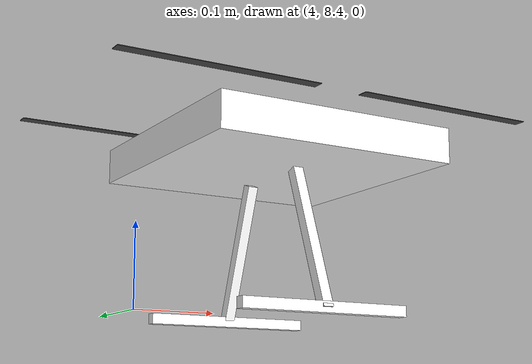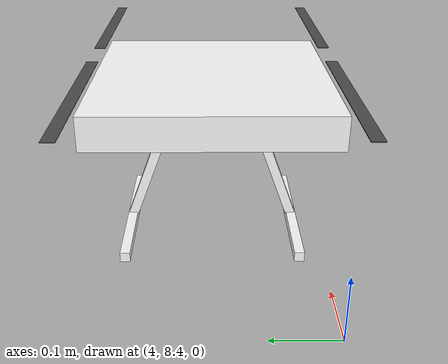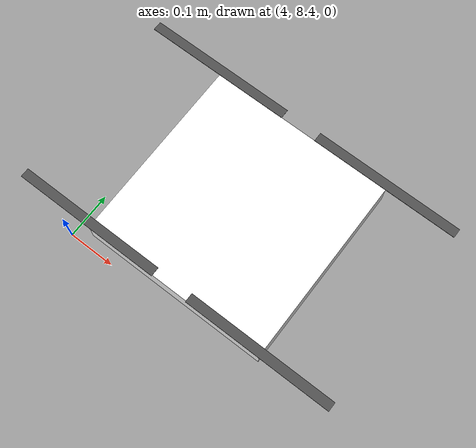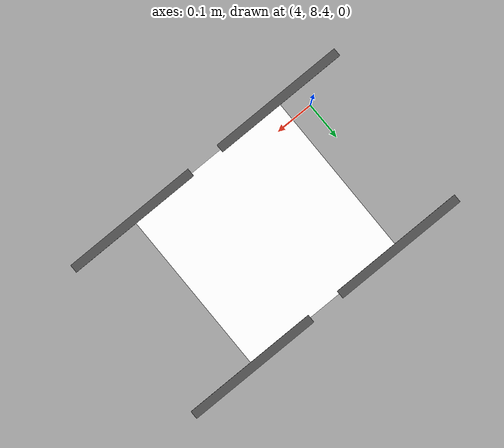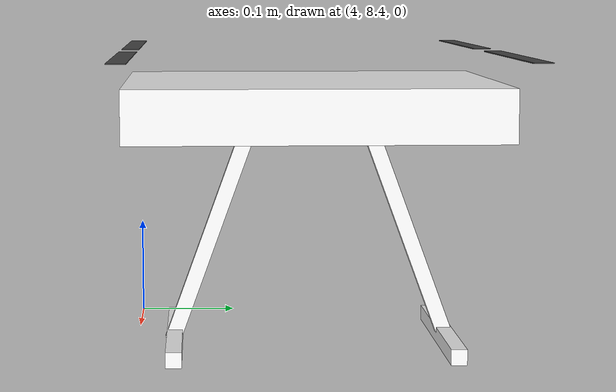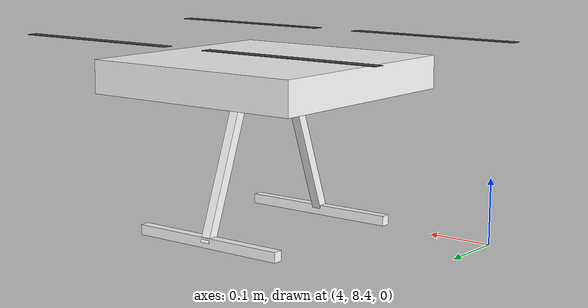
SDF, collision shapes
<?xml version="1.0" ?>
<sdf version="1.9">

    <model name='x500_base'>
      <pose>4.28082 8.57073 0.24 0 -0 0</pose>
      <self_collide>false</self_collide>
      <static>false</static>
      <link name='base_link'>
        <inertial>
          <mass>2</mass>
          <inertia>
            <ixx>0.021666700000000001</ixx>
            <ixy>0</ixy>
            <ixz>0</ixz>
            <iyy>0.021666700000000001</iyy>
            <iyz>0</iyz>
            <izz>0.040000000000000001</izz>
          </inertia>
          <pose>0 0 0 0 -0 0</pose>
        </inertial>
        <gravity>true</gravity>
        <velocity_decay/>
        <visual name='base_link_visual'>
          <pose>0 0 .025 0 0 3.141592654</pose>
          <geometry>
            <mesh>
              <scale>1 1 1</scale>
              <uri>https://fuel.gazebosim.org/1.0/px4/models/x500_base/1/files/meshes/NXP-HGD-CF.dae</uri>
            </mesh>
          </geometry>
        </visual>
        <visual name='5010_motor_base_0'>
          <pose>0.174 0.174 .032 0 0 -.45</pose>
          <geometry>
            <mesh>
              <scale>1 1 1</scale>
              <uri>https://fuel.gazebosim.org/1.0/px4/models/x500_base/1/files/meshes/5010Base.dae</uri>
            </mesh>
          </geometry>
        </visual>
        <visual name='5010_motor_base_1'>
          <pose>-0.174 0.174 .032 0 0 -.45</pose>
          <geometry>
            <mesh>
              <scale>1 1 1</scale>
              <uri>https://fuel.gazebosim.org/1.0/px4/models/x500_base/1/files/meshes/5010Base.dae</uri>
            </mesh>
          </geometry>
        </visual>
        <visual name='5010_motor_base_2'>
          <pose>0.174 -0.174 .032 0 0 -.45</pose>
          <geometry>
            <mesh>
              <scale>1 1 1</scale>
              <uri>https://fuel.gazebosim.org/1.0/px4/models/x500_base/1/files/meshes/5010Base.dae</uri>
            </mesh>
          </geometry>
        </visual>
        <visual name='5010_motor_base_3'>
          <pose>-0.174 -0.174 .032 0 0 -.45</pose>
          <geometry>
            <mesh>
              <scale>1 1 1</scale>
              <uri>https://fuel.gazebosim.org/1.0/px4/models/x500_base/1/files/meshes/5010Base.dae</uri>
            </mesh>
          </geometry>
        </visual>
        <visual name='NXP_FMUK66_FRONT'>
          <pose>0.047 .001 .043 1 0 1.57</pose>
          <cast_shadows>false</cast_shadows>
          <geometry>
            <plane>
              <normal>0 0 1</normal>
              <size>0.013 0.007</size>
            </plane>
          </geometry>
          <material>
            <diffuse>1 1 1 1</diffuse>
            <specular>1 1 1 1</specular>
            <pbr>
              <metal>
                <albedo_map>https://fuel.gazebosim.org/1.0/px4/models/x500_base/1/files/materials/textures/nxp.png</albedo_map>
              </metal>
            </pbr>
          </material>
        </visual>
        <visual name='NXP_FMUK66_TOP'>
          <pose>-0.023 0 .0515 0 0 -1.57</pose>
          <cast_shadows>false</cast_shadows>
          <geometry>
            <plane>
              <normal>0 0 1</normal>
              <size>0.013 0.007</size>
            </plane>
          </geometry>
          <material>
            <diffuse>1 1 1 1</diffuse>
            <specular>1 1 1 1</specular>
            <pbr>
              <metal>
                <albedo_map>https://fuel.gazebosim.org/1.0/px4/models/x500_base/1/files/materials/textures/nxp.png</albedo_map>
              </metal>
            </pbr>
          </material>
        </visual>
        <visual name='RDDRONE_FMUK66_TOP'>
          <pose>-.03 0 .0515 0 0 -1.57</pose>
          <cast_shadows>false</cast_shadows>
          <geometry>
            <plane>
              <normal>0 0 1</normal>
              <size>0.032 0.0034</size>
            </plane>
          </geometry>
          <material>
            <diffuse>1 1 1 1</diffuse>
            <specular>1 1 1 1</specular>
            <pbr>
              <metal>
                <albedo_map>https://fuel.gazebosim.org/1.0/px4/models/x500_base/1/files/materials/textures/rd.png</albedo_map>
              </metal>
            </pbr>
          </material>
        </visual>
        <collision name='base_link_collision_0'>
          <pose>0 0 .007 0 0 0</pose>
          <geometry>
            <box>
              <size>0.353553 0.353553 0.05</size>
            </box>
          </geometry>
          <surface>
            <contact>
              <ode>
                <min_depth>0.001</min_depth>
                <max_vel>0</max_vel>
              </ode>
            </contact>
            <friction>
              <ode/>
            </friction>
            <bounce/>
          </surface>
        </collision>
        <collision name='base_link_collision_1'>
          <pose>0 -0.098 -.123 -0.35 0 0</pose>
          <geometry>
            <box>
              <size>0.015 0.015 0.21</size>
            </box>
          </geometry>
          <surface>
            <contact>
              <ode>
                <min_depth>0.001</min_depth>
                <max_vel>0</max_vel>
              </ode>
            </contact>
            <friction>
              <ode/>
            </friction>
            <bounce/>
          </surface>
        </collision>
        <collision name='base_link_collision_2'>
          <pose>0 0.098 -.123 0.35 0 0</pose>
          <geometry>
            <box>
              <size>0.015 0.015 0.21</size>
            </box>
          </geometry>
          <surface>
            <contact>
              <ode>
                <min_depth>0.001</min_depth>
                <max_vel>0</max_vel>
              </ode>
            </contact>
            <friction>
              <ode/>
            </friction>
            <bounce/>
          </surface>
        </collision>
        <collision name='base_link_collision_3'>
          <pose>0 -0.132 -.2195 0 0 0</pose>
          <geometry>
            <box>
              <size>0.25 0.015 0.015</size>
            </box>
          </geometry>
          <surface>
            <contact>
              <ode>
                <min_depth>0.001</min_depth>
                <max_vel>0</max_vel>
              </ode>
            </contact>
            <friction>
              <ode/>
            </friction>
            <bounce/>
          </surface>
        </collision>
        <collision name='base_link_collision_4'>
          <pose>0 0.132 -.2195 0 0 0</pose>
          <geometry>
            <box>
              <size>0.25 0.015 0.015</size>
            </box>
          </geometry>
          <surface>
            <contact>
              <ode>
                <min_depth>0.001</min_depth>
                <max_vel>0</max_vel>
              </ode>
            </contact>
            <friction>
              <ode/>
            </friction>
            <bounce/>
          </surface>
        </collision>
        <sensor name='air_pressure_sensor' type='air_pressure'>
          <pose>0 0 0 0 -0 0</pose>
          <topic>__default__</topic>
          <update_rate>50</update_rate>
          <enable_metrics>false</enable_metrics>
          <air_pressure>
            <reference_altitude>0</reference_altitude>
            <pressure>
              <noise type='gaussian'>
                <mean>0</mean>
                <stddev>0.01</stddev>
                <bias_mean>0</bias_mean>
                <bias_stddev>0</bias_stddev>
                <dynamic_bias_stddev>0</dynamic_bias_stddev>
                <dynamic_bias_correlation_time>0</dynamic_bias_correlation_time>
                <precision>0</precision>
              </noise>
            </pressure>
          </air_pressure>
        </sensor>
        <sensor name='imu_sensor' type='imu'>
          <pose>0 0 0 0 -0 0</pose>
          <topic>__default__</topic>
          <update_rate>250</update_rate>
          <enable_metrics>false</enable_metrics>
          <imu>
            <orientation_reference_frame>
              <localization>CUSTOM</localization>
              <custom_rpy>0 0 0</custom_rpy>
              <grav_dir_x>1 0 0</grav_dir_x>
            </orientation_reference_frame>
            <angular_velocity>
              <x>
                <noise type='gaussian'>
                  <mean>0</mean>
                  <stddev>0.00018665000000000001</stddev>
                  <bias_mean>0</bias_mean>
                  <bias_stddev>0</bias_stddev>
                  <dynamic_bias_stddev>3.8785000000000002e-05</dynamic_bias_stddev>
                  <dynamic_bias_correlation_time>1000</dynamic_bias_correlation_time>
                  <precision>0</precision>
                </noise>
              </x>
              <y>
                <noise type='gaussian'>
                  <mean>0</mean>
                  <stddev>0.00018665000000000001</stddev>
                  <bias_mean>0</bias_mean>
                  <bias_stddev>0</bias_stddev>
                  <dynamic_bias_stddev>3.8785000000000002e-05</dynamic_bias_stddev>
                  <dynamic_bias_correlation_time>1000</dynamic_bias_correlation_time>
                  <precision>0</precision>
                </noise>
              </y>
              <z>
                <noise type='gaussian'>
                  <mean>0</mean>
                  <stddev>0.00018665000000000001</stddev>
                  <bias_mean>0</bias_mean>
                  <bias_stddev>0</bias_stddev>
                  <dynamic_bias_stddev>3.8785000000000002e-05</dynamic_bias_stddev>
                  <dynamic_bias_correlation_time>1000</dynamic_bias_correlation_time>
                  <precision>0</precision>
                </noise>
              </z>
            </angular_velocity>
            <linear_acceleration>
              <x>
                <noise type='gaussian'>
                  <mean>0</mean>
                  <stddev>0.0018600000000000001</stddev>
                  <bias_mean>0</bias_mean>
                  <bias_stddev>0</bias_stddev>
                  <dynamic_bias_stddev>0.0060000000000000001</dynamic_bias_stddev>
                  <dynamic_bias_correlation_time>300</dynamic_bias_correlation_time>
                  <precision>0</precision>
                </noise>
              </x>
              <y>
                <noise type='gaussian'>
                  <mean>0</mean>
                  <stddev>0.0018600000000000001</stddev>
                  <bias_mean>0</bias_mean>
                  <bias_stddev>0</bias_stddev>
                  <dynamic_bias_stddev>0.0060000000000000001</dynamic_bias_stddev>
                  <dynamic_bias_correlation_time>300</dynamic_bias_correlation_time>
                  <precision>0</precision>
                </noise>
              </y>
              <z>
                <noise type='gaussian'>
                  <mean>0</mean>
                  <stddev>0.0018600000000000001</stddev>
                  <bias_mean>0</bias_mean>
                  <bias_stddev>0</bias_stddev>
                  <dynamic_bias_stddev>0.0060000000000000001</dynamic_bias_stddev>
                  <dynamic_bias_correlation_time>300</dynamic_bias_correlation_time>
                  <precision>0</precision>
                </noise>
              </z>
            </linear_acceleration>
            <enable_orientation>true</enable_orientation>
          </imu>
        </sensor>
        <sensor name='navsat_sensor' type='navsat'>
          <always_on>true</always_on>
          <update_rate>30</update_rate>
          <gps/>
        </sensor>
        <pose>0 0 0 0 -0 0</pose>
        <enable_wind>true</enable_wind>
      </link>
      <link name='rotor_0'>
        <gravity>true</gravity>
        <self_collide>false</self_collide>
        <velocity_decay/>
        <pose>0.174 -0.174 0.06 0 -0 0</pose>
        <inertial>
          <mass>0.016076900000000002</mass>
          <inertia>
            <ixx>3.8464900000000002e-07</ixx>
            <iyy>2.6115899999999998e-05</iyy>
            <izz>2.6498600000000001e-05</izz>
            <ixy>0</ixy>
            <ixz>0</ixz>
            <iyz>0</iyz>
          </inertia>
          <pose>0 0 0 0 -0 0</pose>
        </inertial>
        <visual name='rotor_0_visual'>
          <pose>-0.022 -0.14638461538461536 -0.016 0 0 0</pose>
          <geometry>
            <mesh>
              <scale>0.846154 0.846154 0.846154</scale>
              <uri>https://fuel.gazebosim.org/1.0/px4/models/x500_base/1/files/meshes/1345_prop_ccw.stl</uri>
            </mesh>
          </geometry>
          <material>
            <script>
              <name>Gazebo/DarkGrey</name>
              <uri>file://media/materials/scripts/gazebo.material</uri>
            </script>
          </material>
        </visual>
        <visual name='rotor_0_visual_motor_bell'>
          <pose>0 0 -.032 0 0 0</pose>
          <geometry>
            <mesh>
              <scale>1 1 1</scale>
              <uri>https://fuel.gazebosim.org/1.0/px4/models/x500_base/1/files/meshes/5010Bell.dae</uri>
            </mesh>
          </geometry>
        </visual>
        <collision name='rotor_0_collision'>
          <pose>0 0 0 0 0 0</pose>
          <geometry>
            <box>
              <size>0.279231 0.016923 0.000846</size>
            </box>
          </geometry>
          <surface>
            <contact>
              <ode>
                <min_depth>0.001</min_depth>
                <max_vel>0</max_vel>
              </ode>
            </contact>
            <friction>
              <ode/>
            </friction>
            <bounce/>
          </surface>
        </collision>
        <enable_wind>true</enable_wind>
      </link>
      <joint name='rotor_0_joint' type='revolute'>
        <parent>base_link</parent>
        <child>rotor_0</child>
        <axis>
          <xyz>0 0 1</xyz>
          <limit>
            <lower>-10000000000000000</lower>
            <upper>10000000000000000</upper>
            <effort>inf</effort>
            <velocity>inf</velocity>
            <stiffness>100000000</stiffness>
            <dissipation>1</dissipation>
          </limit>
          <dynamics>
            <spring_reference>0</spring_reference>
            <spring_stiffness>0</spring_stiffness>
            <damping>0</damping>
            <friction>0</friction>
          </dynamics>
        </axis>
        <pose>0 0 0 0 -0 0</pose>
      </joint>
      <link name='rotor_1'>
        <gravity>true</gravity>
        <self_collide>false</self_collide>
        <velocity_decay/>
        <pose>-0.174 0.174 0.06 0 -0 0</pose>
        <inertial>
          <mass>0.016076900000000002</mass>
          <inertia>
            <ixx>3.8464900000000002e-07</ixx>
            <iyy>2.6115899999999998e-05</iyy>
            <izz>2.6498600000000001e-05</izz>
            <ixy>0</ixy>
            <ixz>0</ixz>
            <iyz>0</iyz>
          </inertia>
          <pose>0 0 0 0 -0 0</pose>
        </inertial>
        <visual name='rotor_1_visual'>
          <pose>-0.022 -0.14638461538461536 -0.016 0 0 0</pose>
          <geometry>
            <mesh>
              <scale>0.846154 0.846154 0.846154</scale>
              <uri>https://fuel.gazebosim.org/1.0/px4/models/x500_base/1/files/meshes/1345_prop_ccw.stl</uri>
            </mesh>
          </geometry>
          <material>
            <script>
              <name>Gazebo/DarkGrey</name>
              <uri>file://media/materials/scripts/gazebo.material</uri>
            </script>
          </material>
        </visual>
        <visual name='rotor_1_visual_motor_top'>
          <pose>0 0 -.032 0 0 0</pose>
          <geometry>
            <mesh>
              <scale>1 1 1</scale>
              <uri>https://fuel.gazebosim.org/1.0/px4/models/x500_base/1/files/meshes/5010Bell.dae</uri>
            </mesh>
          </geometry>
        </visual>
        <collision name='rotor_1_collision'>
          <pose>0 0 0 0 0 0</pose>
          <geometry>
            <box>
              <size>0.279231 0.016923 0.000846</size>
            </box>
          </geometry>
          <surface>
            <contact>
              <ode>
                <min_depth>0.001</min_depth>
                <max_vel>0</max_vel>
              </ode>
            </contact>
            <friction>
              <ode/>
            </friction>
            <bounce/>
          </surface>
        </collision>
        <enable_wind>true</enable_wind>
      </link>
      <joint name='rotor_1_joint' type='revolute'>
        <parent>base_link</parent>
        <child>rotor_1</child>
        <axis>
          <xyz>0 0 1</xyz>
          <limit>
            <lower>-10000000000000000</lower>
            <upper>10000000000000000</upper>
            <effort>inf</effort>
            <velocity>inf</velocity>
            <stiffness>100000000</stiffness>
            <dissipation>1</dissipation>
          </limit>
          <dynamics>
            <spring_reference>0</spring_reference>
            <spring_stiffness>0</spring_stiffness>
            <damping>0</damping>
            <friction>0</friction>
          </dynamics>
        </axis>
        <pose>0 0 0 0 -0 0</pose>
      </joint>
      <link name='rotor_2'>
        <gravity>true</gravity>
        <self_collide>false</self_collide>
        <velocity_decay/>
        <pose>0.174 0.174 0.06 0 -0 0</pose>
        <inertial>
          <mass>0.016076900000000002</mass>
          <inertia>
            <ixx>3.8464900000000002e-07</ixx>
            <iyy>2.6115899999999998e-05</iyy>
            <izz>2.6498600000000001e-05</izz>
            <ixy>0</ixy>
            <ixz>0</ixz>
            <iyz>0</iyz>
          </inertia>
          <pose>0 0 0 0 -0 0</pose>
        </inertial>
        <visual name='rotor_2_visual'>
          <pose>-0.022 -0.14638461538461536 -0.016 0 0 0</pose>
          <geometry>
            <mesh>
              <scale>0.846154 0.846154 0.846154</scale>
              <uri>https://fuel.gazebosim.org/1.0/px4/models/x500_base/1/files/meshes/1345_prop_cw.stl</uri>
            </mesh>
          </geometry>
          <material>
            <script>
              <name>Gazebo/DarkGrey</name>
              <uri>file://media/materials/scripts/gazebo.material</uri>
            </script>
          </material>
        </visual>
        <visual name='rotor_2_visual_motor_top'>
          <pose>0 0 -.032 0 0 0</pose>
          <geometry>
            <mesh>
              <scale>1 1 1</scale>
              <uri>https://fuel.gazebosim.org/1.0/px4/models/x500_base/1/files/meshes/5010Bell.dae</uri>
            </mesh>
          </geometry>
        </visual>
        <collision name='rotor_2_collision'>
          <pose>0 0 0 0 0 0</pose>
          <geometry>
            <box>
              <size>0.279231 0.016923 0.000846</size>
            </box>
          </geometry>
          <surface>
            <contact>
              <ode>
                <min_depth>0.001</min_depth>
                <max_vel>0</max_vel>
              </ode>
            </contact>
            <friction>
              <ode/>
            </friction>
            <bounce/>
          </surface>
        </collision>
        <enable_wind>true</enable_wind>
      </link>
      <joint name='rotor_2_joint' type='revolute'>
        <parent>base_link</parent>
        <child>rotor_2</child>
        <axis>
          <xyz>0 0 1</xyz>
          <limit>
            <lower>-10000000000000000</lower>
            <upper>10000000000000000</upper>
            <effort>inf</effort>
            <velocity>inf</velocity>
            <stiffness>100000000</stiffness>
            <dissipation>1</dissipation>
          </limit>
          <dynamics>
            <spring_reference>0</spring_reference>
            <spring_stiffness>0</spring_stiffness>
            <damping>0</damping>
            <friction>0</friction>
          </dynamics>
        </axis>
        <pose>0 0 0 0 -0 0</pose>
      </joint>
      <link name='rotor_3'>
        <gravity>true</gravity>
        <self_collide>false</self_collide>
        <velocity_decay/>
        <pose>-0.174 -0.174 0.06 0 -0 0</pose>
        <inertial>
          <mass>0.016076900000000002</mass>
          <inertia>
            <ixx>3.8464900000000002e-07</ixx>
            <iyy>2.6115899999999998e-05</iyy>
            <izz>2.6498600000000001e-05</izz>
            <ixy>0</ixy>
            <ixz>0</ixz>
            <iyz>0</iyz>
          </inertia>
          <pose>0 0 0 0 -0 0</pose>
        </inertial>
        <visual name='rotor_3_visual'>
          <pose>-0.022 -0.14638461538461536 -0.016 0 0 0</pose>
          <geometry>
            <mesh>
              <scale>0.846154 0.846154 0.846154</scale>
              <uri>https://fuel.gazebosim.org/1.0/px4/models/x500_base/1/files/meshes/1345_prop_cw.stl</uri>
            </mesh>
          </geometry>
          <material>
            <script>
              <name>Gazebo/DarkGrey</name>
              <uri>file://media/materials/scripts/gazebo.material</uri>
            </script>
          </material>
        </visual>
        <visual name='rotor_3_visual_motor_top'>
          <pose>0 0 -.032 0 0 0</pose>
          <geometry>
            <mesh>
              <scale>1 1 1</scale>
              <uri>https://fuel.gazebosim.org/1.0/px4/models/x500_base/1/files/meshes/5010Bell.dae</uri>
            </mesh>
          </geometry>
        </visual>
        <collision name='rotor_3_collision'>
          <pose>0 0 0 0 0 0</pose>
          <geometry>
            <box>
              <size>0.279231 0.016923 0.000846</size>
            </box>
          </geometry>
          <surface>
            <contact>
              <ode>
                <min_depth>0.001</min_depth>
                <max_vel>0</max_vel>
              </ode>
            </contact>
            <friction>
              <ode/>
            </friction>
            <bounce/>
          </surface>
        </collision>

      </link>
      <joint name='rotor_3_joint' type='revolute'>
        <parent>base_link</parent>
        <child>rotor_3</child>
        <axis>
          <xyz>0 0 1</xyz>
          <limit>
            <lower>-10000000000000000</lower>
            <upper>10000000000000000</upper>
            <effort>inf</effort>
            <velocity>inf</velocity>
            <stiffness>100000000</stiffness>
            <dissipation>1</dissipation>
          </limit>
          <dynamics>
            <spring_reference>0</spring_reference>
            <spring_stiffness>0</spring_stiffness>
            <damping>0</damping>
            <friction>0</friction>
          </dynamics>
        </axis>
        <pose>0 0 0 0 -0 0</pose>
      </joint>
    </model>

</sdf>
